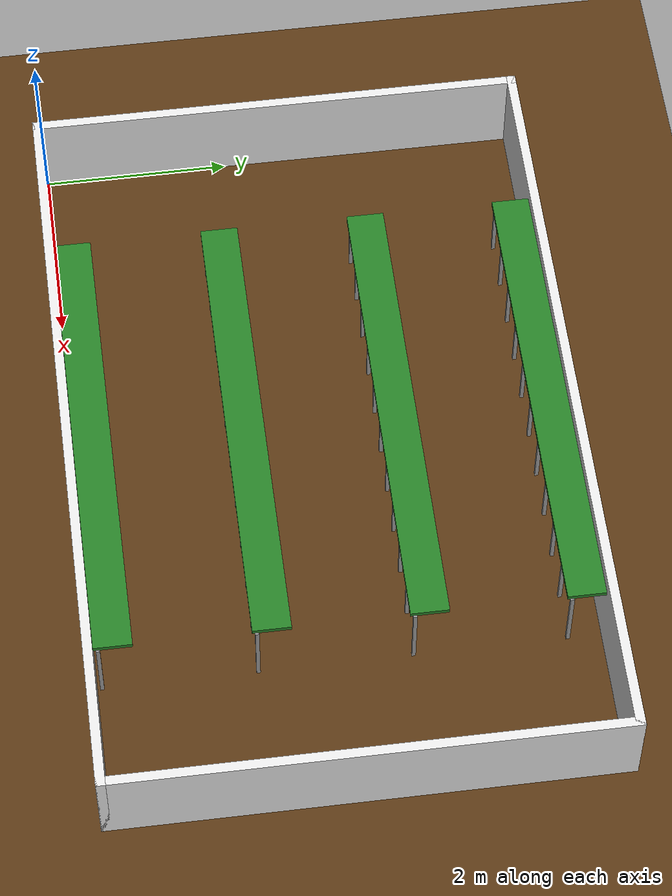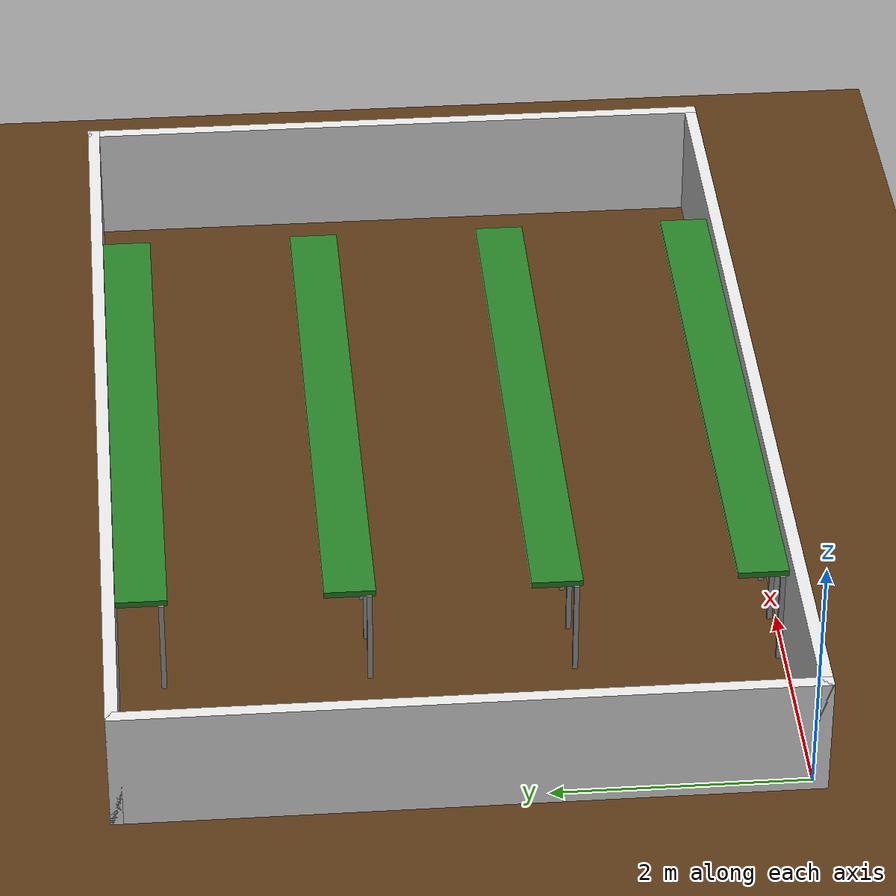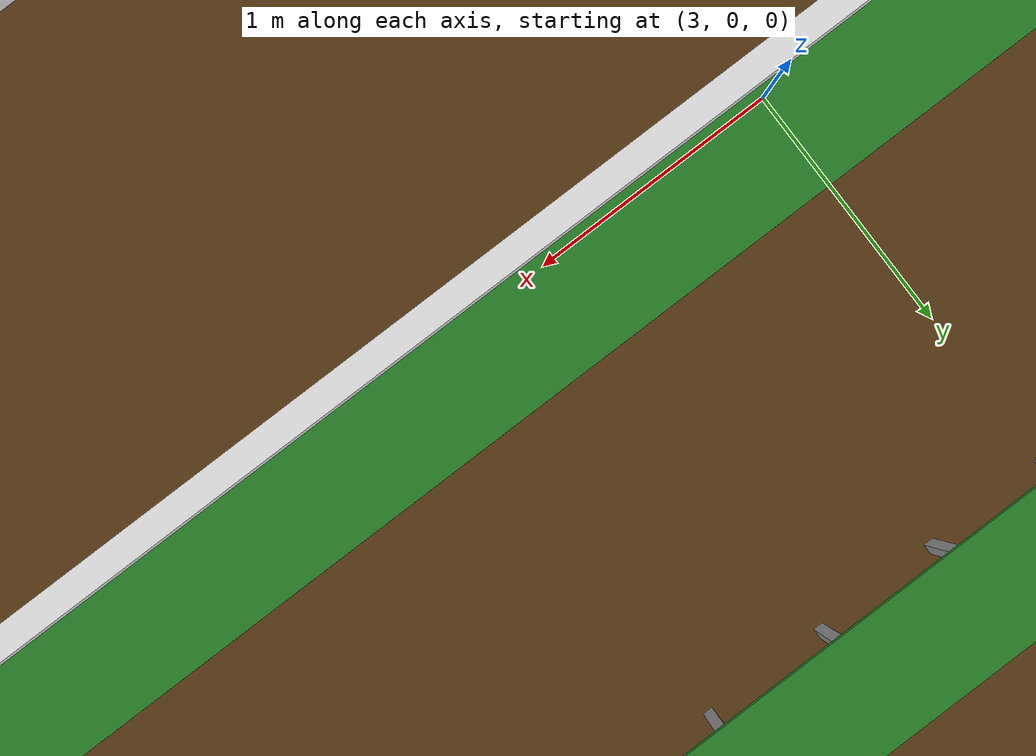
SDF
<?xml version="1.0"?>
<sdf version="1.6">
  <world name="greenhouse">
    <include><uri>model://sun</uri></include>
    <physics type="ode">
      <real_time_update_rate>1000.0</real_time_update_rate>
      <max_step_size>0.001</max_step_size>
    </physics>

    <!-- 갈색 바닥 -->
    <model name="floor">
      <static>true</static>
      <link name="link">
        <collision name="col">
          <geometry>
            <plane><normal>0 0 1</normal><size>20 20</size></plane>
          </geometry>
        </collision>
        <visual name="vis">
          <geometry>
            <plane><normal>0 0 1</normal><size>20 20</size></plane>
          </geometry>
          <material>
            <ambient>0.35 0.22 0.08 1</ambient>
            <diffuse>0.35 0.22 0.08 1</diffuse>
          </material>
        </visual>
      </link>
    </model>

    <!-- 외벽 -->
    <model name="wall_front">
      <static>true</static>
      <pose>-0.05 2.6 0.5 0 0 0</pose>
      <link name="link">
        <collision name="col">
          <geometry><box><size>0.1 5.4 1.0</size></box></geometry>
        </collision>
        <visual name="vis">
          <geometry><box><size>0.1 5.4 1.0</size></box></geometry>
          <material><ambient>0.9 0.9 0.9 1</ambient></material>
        </visual>
      </link>
    </model>

    <model name="wall_back">
      <static>true</static>
      <pose>8.05 2.6 0.5 0 0 0</pose>
      <link name="link">
        <collision name="col">
          <geometry><box><size>0.1 5.4 1.0</size></box></geometry>
        </collision>
        <visual name="vis">
          <geometry><box><size>0.1 5.4 1.0</size></box></geometry>
          <material><ambient>0.9 0.9 0.9 1</ambient></material>
        </visual>
      </link>
    </model>

    <model name="wall_left">
      <static>true</static>
      <pose>4.0 -0.05 0.5 0 0 0</pose>
      <link name="link">
        <collision name="col">
          <geometry><box><size>8.2 0.1 1.0</size></box></geometry>
        </collision>
        <visual name="vis">
          <geometry><box><size>8.2 0.1 1.0</size></box></geometry>
          <material><ambient>0.9 0.9 0.9 1</ambient></material>
        </visual>
      </link>
    </model>

    <model name="wall_right">
      <static>true</static>
      <pose>4.0 5.25 0.5 0 0 0</pose>
      <link name="link">
        <collision name="col">
          <geometry><box><size>8.2 0.1 1.0</size></box></geometry>
        </collision>
        <visual name="vis">
          <geometry><box><size>8.2 0.1 1.0</size></box></geometry>
          <material><ambient>0.9 0.9 0.9 1</ambient></material>
        </visual>
      </link>
    </model>

    <!-- 베드 상판 색상: 진한 초록 -->
    <!-- 기둥 색상: 회색 -->

    <!-- ── 베드 1 (y=0.2) ── -->
    <!-- 상판 -->
    <model name="bed1_top">
      <static>true</static>
      <pose>4.0 0.2 0.82 0 0 0</pose>
      <link name="link">
        <collision name="col">
          <geometry><box><size>5.0 0.4 0.05</size></box></geometry>
        </collision>
        <visual name="vis">
          <geometry><box><size>5.0 0.4 0.05</size></box></geometry>
          <material>
            <ambient>0.15 0.5 0.15 1</ambient>
            <diffuse>0.15 0.5 0.15 1</diffuse>
          </material>
        </visual>
      </link>
    </model>

    <!-- 베드1 기둥 (x=1.5~6.5, 0.5m 간격 = 11개) -->
    <model name="bed1_col_1"><static>true</static><pose>1.5 0.05 0.4 0 0 0</pose><link name="link"><collision name="col"><geometry><box><size>0.04 0.04 0.8</size></box></geometry></collision><visual name="vis"><geometry><box><size>0.04 0.04 0.8</size></box></geometry><material><ambient>0.6 0.6 0.6 1</ambient></material></visual></link></model>
    <model name="bed1_col_2"><static>true</static><pose>2.0 0.05 0.4 0 0 0</pose><link name="link"><collision name="col"><geometry><box><size>0.04 0.04 0.8</size></box></geometry></collision><visual name="vis"><geometry><box><size>0.04 0.04 0.8</size></box></geometry><material><ambient>0.6 0.6 0.6 1</ambient></material></visual></link></model>
    <model name="bed1_col_3"><static>true</static><pose>2.5 0.05 0.4 0 0 0</pose><link name="link"><collision name="col"><geometry><box><size>0.04 0.04 0.8</size></box></geometry></collision><visual name="vis"><geometry><box><size>0.04 0.04 0.8</size></box></geometry><material><ambient>0.6 0.6 0.6 1</ambient></material></visual></link></model>
    <model name="bed1_col_4"><static>true</static><pose>3.0 0.05 0.4 0 0 0</pose><link name="link"><collision name="col"><geometry><box><size>0.04 0.04 0.8</size></box></geometry></collision><visual name="vis"><geometry><box><size>0.04 0.04 0.8</size></box></geometry><material><ambient>0.6 0.6 0.6 1</ambient></material></visual></link></model>
    <model name="bed1_col_5"><static>true</static><pose>3.5 0.05 0.4 0 0 0</pose><link name="link"><collision name="col"><geometry><box><size>0.04 0.04 0.8</size></box></geometry></collision><visual name="vis"><geometry><box><size>0.04 0.04 0.8</size></box></geometry><material><ambient>0.6 0.6 0.6 1</ambient></material></visual></link></model>
    <model name="bed1_col_6"><static>true</static><pose>4.0 0.05 0.4 0 0 0</pose><link name="link"><collision name="col"><geometry><box><size>0.04 0.04 0.8</size></box></geometry></collision><visual name="vis"><geometry><box><size>0.04 0.04 0.8</size></box></geometry><material><ambient>0.6 0.6 0.6 1</ambient></material></visual></link></model>
    <model name="bed1_col_7"><static>true</static><pose>4.5 0.05 0.4 0 0 0</pose><link name="link"><collision name="col"><geometry><box><size>0.04 0.04 0.8</size></box></geometry></collision><visual name="vis"><geometry><box><size>0.04 0.04 0.8</size></box></geometry><material><ambient>0.6 0.6 0.6 1</ambient></material></visual></link></model>
    <model name="bed1_col_8"><static>true</static><pose>5.0 0.05 0.4 0 0 0</pose><link name="link"><collision name="col"><geometry><box><size>0.04 0.04 0.8</size></box></geometry></collision><visual name="vis"><geometry><box><size>0.04 0.04 0.8</size></box></geometry><material><ambient>0.6 0.6 0.6 1</ambient></material></visual></link></model>
    <model name="bed1_col_9"><static>true</static><pose>5.5 0.05 0.4 0 0 0</pose><link name="link"><collision name="col"><geometry><box><size>0.04 0.04 0.8</size></box></geometry></collision><visual name="vis"><geometry><box><size>0.04 0.04 0.8</size></box></geometry><material><ambient>0.6 0.6 0.6 1</ambient></material></visual></link></model>
    <model name="bed1_col_10"><static>true</static><pose>6.0 0.05 0.4 0 0 0</pose><link name="link"><collision name="col"><geometry><box><size>0.04 0.04 0.8</size></box></geometry></collision><visual name="vis"><geometry><box><size>0.04 0.04 0.8</size></box></geometry><material><ambient>0.6 0.6 0.6 1</ambient></material></visual></link></model>
    <model name="bed1_col_11"><static>true</static><pose>6.5 0.05 0.4 0 0 0</pose><link name="link"><collision name="col"><geometry><box><size>0.04 0.04 0.8</size></box></geometry></collision><visual name="vis"><geometry><box><size>0.04 0.04 0.8</size></box></geometry><material><ambient>0.6 0.6 0.6 1</ambient></material></visual></link></model>

    <!-- ── 베드 2 (y=1.8) ── -->
    <model name="bed2_top">
      <static>true</static>
      <pose>4.0 1.8 0.82 0 0 0</pose>
      <link name="link">
        <collision name="col">
          <geometry><box><size>5.0 0.4 0.05</size></box></geometry>
        </collision>
        <visual name="vis">
          <geometry><box><size>5.0 0.4 0.05</size></box></geometry>
          <material>
            <ambient>0.15 0.5 0.15 1</ambient>
            <diffuse>0.15 0.5 0.15 1</diffuse>
          </material>
        </visual>
      </link>
    </model>

    <model name="bed2_col_1"><static>true</static><pose>1.5 1.65 0.4 0 0 0</pose><link name="link"><collision name="col"><geometry><box><size>0.04 0.04 0.8</size></box></geometry></collision><visual name="vis"><geometry><box><size>0.04 0.04 0.8</size></box></geometry><material><ambient>0.6 0.6 0.6 1</ambient></material></visual></link></model>
    <model name="bed2_col_2"><static>true</static><pose>2.0 1.65 0.4 0 0 0</pose><link name="link"><collision name="col"><geometry><box><size>0.04 0.04 0.8</size></box></geometry></collision><visual name="vis"><geometry><box><size>0.04 0.04 0.8</size></box></geometry><material><ambient>0.6 0.6 0.6 1</ambient></material></visual></link></model>
    <model name="bed2_col_3"><static>true</static><pose>2.5 1.65 0.4 0 0 0</pose><link name="link"><collision name="col"><geometry><box><size>0.04 0.04 0.8</size></box></geometry></collision><visual name="vis"><geometry><box><size>0.04 0.04 0.8</size></box></geometry><material><ambient>0.6 0.6 0.6 1</ambient></material></visual></link></model>
    <model name="bed2_col_4"><static>true</static><pose>3.0 1.65 0.4 0 0 0</pose><link name="link"><collision name="col"><geometry><box><size>0.04 0.04 0.8</size></box></geometry></collision><visual name="vis"><geometry><box><size>0.04 0.04 0.8</size></box></geometry><material><ambient>0.6 0.6 0.6 1</ambient></material></visual></link></model>
    <model name="bed2_col_5"><static>true</static><pose>3.5 1.65 0.4 0 0 0</pose><link name="link"><collision name="col"><geometry><box><size>0.04 0.04 0.8</size></box></geometry></collision><visual name="vis"><geometry><box><size>0.04 0.04 0.8</size></box></geometry><material><ambient>0.6 0.6 0.6 1</ambient></material></visual></link></model>
    <model name="bed2_col_6"><static>true</static><pose>4.0 1.65 0.4 0 0 0</pose><link name="link"><collision name="col"><geometry><box><size>0.04 0.04 0.8</size></box></geometry></collision><visual name="vis"><geometry><box><size>0.04 0.04 0.8</size></box></geometry><material><ambient>0.6 0.6 0.6 1</ambient></material></visual></link></model>
    <model name="bed2_col_7"><static>true</static><pose>4.5 1.65 0.4 0 0 0</pose><link name="link"><collision name="col"><geometry><box><size>0.04 0.04 0.8</size></box></geometry></collision><visual name="vis"><geometry><box><size>0.04 0.04 0.8</size></box></geometry><material><ambient>0.6 0.6 0.6 1</ambient></material></visual></link></model>
    <model name="bed2_col_8"><static>true</static><pose>5.0 1.65 0.4 0 0 0</pose><link name="link"><collision name="col"><geometry><box><size>0.04 0.04 0.8</size></box></geometry></collision><visual name="vis"><geometry><box><size>0.04 0.04 0.8</size></box></geometry><material><ambient>0.6 0.6 0.6 1</ambient></material></visual></link></model>
    <model name="bed2_col_9"><static>true</static><pose>5.5 1.65 0.4 0 0 0</pose><link name="link"><collision name="col"><geometry><box><size>0.04 0.04 0.8</size></box></geometry></collision><visual name="vis"><geometry><box><size>0.04 0.04 0.8</size></box></geometry><material><ambient>0.6 0.6 0.6 1</ambient></material></visual></link></model>
    <model name="bed2_col_10"><static>true</static><pose>6.0 1.65 0.4 0 0 0</pose><link name="link"><collision name="col"><geometry><box><size>0.04 0.04 0.8</size></box></geometry></collision><visual name="vis"><geometry><box><size>0.04 0.04 0.8</size></box></geometry><material><ambient>0.6 0.6 0.6 1</ambient></material></visual></link></model>
    <model name="bed2_col_11"><static>true</static><pose>6.5 1.65 0.4 0 0 0</pose><link name="link"><collision name="col"><geometry><box><size>0.04 0.04 0.8</size></box></geometry></collision><visual name="vis"><geometry><box><size>0.04 0.04 0.8</size></box></geometry><material><ambient>0.6 0.6 0.6 1</ambient></material></visual></link></model>

    <!-- ── 베드 3 (y=3.4) ── -->
    <model name="bed3_top">
      <static>true</static>
      <pose>4.0 3.4 0.82 0 0 0</pose>
      <link name="link">
        <collision name="col">
          <geometry><box><size>5.0 0.4 0.05</size></box></geometry>
        </collision>
        <visual name="vis">
          <geometry><box><size>5.0 0.4 0.05</size></box></geometry>
          <material>
            <ambient>0.15 0.5 0.15 1</ambient>
            <diffuse>0.15 0.5 0.15 1</diffuse>
          </material>
        </visual>
      </link>
    </model>

    <model name="bed3_col_1"><static>true</static><pose>1.5 3.25 0.4 0 0 0</pose><link name="link"><collision name="col"><geometry><box><size>0.04 0.04 0.8</size></box></geometry></collision><visual name="vis"><geometry><box><size>0.04 0.04 0.8</size></box></geometry><material><ambient>0.6 0.6 0.6 1</ambient></material></visual></link></model>
    <model name="bed3_col_2"><static>true</static><pose>2.0 3.25 0.4 0 0 0</pose><link name="link"><collision name="col"><geometry><box><size>0.04 0.04 0.8</size></box></geometry></collision><visual name="vis"><geometry><box><size>0.04 0.04 0.8</size></box></geometry><material><ambient>0.6 0.6 0.6 1</ambient></material></visual></link></model>
    <model name="bed3_col_3"><static>true</static><pose>2.5 3.25 0.4 0 0 0</pose><link name="link"><collision name="col"><geometry><box><size>0.04 0.04 0.8</size></box></geometry></collision><visual name="vis"><geometry><box><size>0.04 0.04 0.8</size></box></geometry><material><ambient>0.6 0.6 0.6 1</ambient></material></visual></link></model>
    <model name="bed3_col_4"><static>true</static><pose>3.0 3.25 0.4 0 0 0</pose><link name="link"><collision name="col"><geometry><box><size>0.04 0.04 0.8</size></box></geometry></collision><visual name="vis"><geometry><box><size>0.04 0.04 0.8</size></box></geometry><material><ambient>0.6 0.6 0.6 1</ambient></material></visual></link></model>
    <model name="bed3_col_5"><static>true</static><pose>3.5 3.25 0.4 0 0 0</pose><link name="link"><collision name="col"><geometry><box><size>0.04 0.04 0.8</size></box></geometry></collision><visual name="vis"><geometry><box><size>0.04 0.04 0.8</size></box></geometry><material><ambient>0.6 0.6 0.6 1</ambient></material></visual></link></model>
    <model name="bed3_col_6"><static>true</static><pose>4.0 3.25 0.4 0 0 0</pose><link name="link"><collision name="col"><geometry><box><size>0.04 0.04 0.8</size></box></geometry></collision><visual name="vis"><geometry><box><size>0.04 0.04 0.8</size></box></geometry><material><ambient>0.6 0.6 0.6 1</ambient></material></visual></link></model>
    <model name="bed3_col_7"><static>true</static><pose>4.5 3.25 0.4 0 0 0</pose><link name="link"><collision name="col"><geometry><box><size>0.04 0.04 0.8</size></box></geometry></collision><visual name="vis"><geometry><box><size>0.04 0.04 0.8</size></box></geometry><material><ambient>0.6 0.6 0.6 1</ambient></material></visual></link></model>
    <model name="bed3_col_8"><static>true</static><pose>5.0 3.25 0.4 0 0 0</pose><link name="link"><collision name="col"><geometry><box><size>0.04 0.04 0.8</size></box></geometry></collision><visual name="vis"><geometry><box><size>0.04 0.04 0.8</size></box></geometry><material><ambient>0.6 0.6 0.6 1</ambient></material></visual></link></model>
    <model name="bed3_col_9"><static>true</static><pose>5.5 3.25 0.4 0 0 0</pose><link name="link"><collision name="col"><geometry><box><size>0.04 0.04 0.8</size></box></geometry></collision><visual name="vis"><geometry><box><size>0.04 0.04 0.8</size></box></geometry><material><ambient>0.6 0.6 0.6 1</ambient></material></visual></link></model>
    <model name="bed3_col_10"><static>true</static><pose>6.0 3.25 0.4 0 0 0</pose><link name="link"><collision name="col"><geometry><box><size>0.04 0.04 0.8</size></box></geometry></collision><visual name="vis"><geometry><box><size>0.04 0.04 0.8</size></box></geometry><material><ambient>0.6 0.6 0.6 1</ambient></material></visual></link></model>
    <model name="bed3_col_11"><static>true</static><pose>6.5 3.25 0.4 0 0 0</pose><link name="link"><collision name="col"><geometry><box><size>0.04 0.04 0.8</size></box></geometry></collision><visual name="vis"><geometry><box><size>0.04 0.04 0.8</size></box></geometry><material><ambient>0.6 0.6 0.6 1</ambient></material></visual></link></model>

    <!-- ── 베드 4 (y=5.0) ── -->
    <model name="bed4_top">
      <static>true</static>
      <pose>4.0 5.0 0.82 0 0 0</pose>
      <link name="link">
        <collision name="col">
          <geometry><box><size>5.0 0.4 0.05</size></box></geometry>
        </collision>
        <visual name="vis">
          <geometry><box><size>5.0 0.4 0.05</size></box></geometry>
          <material>
            <ambient>0.15 0.5 0.15 1</ambient>
            <diffuse>0.15 0.5 0.15 1</diffuse>
          </material>
        </visual>
      </link>
    </model>

    <model name="bed4_col_1"><static>true</static><pose>1.5 4.85 0.4 0 0 0</pose><link name="link"><collision name="col"><geometry><box><size>0.04 0.04 0.8</size></box></geometry></collision><visual name="vis"><geometry><box><size>0.04 0.04 0.8</size></box></geometry><material><ambient>0.6 0.6 0.6 1</ambient></material></visual></link></model>
    <model name="bed4_col_2"><static>true</static><pose>2.0 4.85 0.4 0 0 0</pose><link name="link"><collision name="col"><geometry><box><size>0.04 0.04 0.8</size></box></geometry></collision><visual name="vis"><geometry><box><size>0.04 0.04 0.8</size></box></geometry><material><ambient>0.6 0.6 0.6 1</ambient></material></visual></link></model>
    <model name="bed4_col_3"><static>true</static><pose>2.5 4.85 0.4 0 0 0</pose><link name="link"><collision name="col"><geometry><box><size>0.04 0.04 0.8</size></box></geometry></collision><visual name="vis"><geometry><box><size>0.04 0.04 0.8</size></box></geometry><material><ambient>0.6 0.6 0.6 1</ambient></material></visual></link></model>
    <model name="bed4_col_4"><static>true</static><pose>3.0 4.85 0.4 0 0 0</pose><link name="link"><collision name="col"><geometry><box><size>0.04 0.04 0.8</size></box></geometry></collision><visual name="vis"><geometry><box><size>0.04 0.04 0.8</size></box></geometry><material><ambient>0.6 0.6 0.6 1</ambient></material></visual></link></model>
    <model name="bed4_col_5"><static>true</static><pose>3.5 4.85 0.4 0 0 0</pose><link name="link"><collision name="col"><geometry><box><size>0.04 0.04 0.8</size></box></geometry></collision><visual name="vis"><geometry><box><size>0.04 0.04 0.8</size></box></geometry><material><ambient>0.6 0.6 0.6 1</ambient></material></visual></link></model>
    <model name="bed4_col_6"><static>true</static><pose>4.0 4.85 0.4 0 0 0</pose><link name="link"><collision name="col"><geometry><box><size>0.04 0.04 0.8</size></box></geometry></collision><visual name="vis"><geometry><box><size>0.04 0.04 0.8</size></box></geometry><material><ambient>0.6 0.6 0.6 1</ambient></material></visual></link></model>
    <model name="bed4_col_7"><static>true</static><pose>4.5 4.85 0.4 0 0 0</pose><link name="link"><collision name="col"><geometry><box><size>0.04 0.04 0.8</size></box></geometry></collision><visual name="vis"><geometry><box><size>0.04 0.04 0.8</size></box></geometry><material><ambient>0.6 0.6 0.6 1</ambient></material></visual></link></model>
    <model name="bed4_col_8"><static>true</static><pose>5.0 4.85 0.4 0 0 0</pose><link name="link"><collision name="col"><geometry><box><size>0.04 0.04 0.8</size></box></geometry></collision><visual name="vis"><geometry><box><size>0.04 0.04 0.8</size></box></geometry><material><ambient>0.6 0.6 0.6 1</ambient></material></visual></link></model>
    <model name="bed4_col_9"><static>true</static><pose>5.5 4.85 0.4 0 0 0</pose><link name="link"><collision name="col"><geometry><box><size>0.04 0.04 0.8</size></box></geometry></collision><visual name="vis"><geometry><box><size>0.04 0.04 0.8</size></box></geometry><material><ambient>0.6 0.6 0.6 1</ambient></material></visual></link></model>
    <model name="bed4_col_10"><static>true</static><pose>6.0 4.85 0.4 0 0 0</pose><link name="link"><collision name="col"><geometry><box><size>0.04 0.04 0.8</size></box></geometry></collision><visual name="vis"><geometry><box><size>0.04 0.04 0.8</size></box></geometry><material><ambient>0.6 0.6 0.6 1</ambient></material></visual></link></model>
    <model name="bed4_col_11"><static>true</static><pose>6.5 4.85 0.4 0 0 0</pose><link name="link"><collision name="col"><geometry><box><size>0.04 0.04 0.8</size></box></geometry></collision><visual name="vis"><geometry><box><size>0.04 0.04 0.8</size></box></geometry><material><ambient>0.6 0.6 0.6 1</ambient></material></visual></link></model>

  </world>
</sdf>
